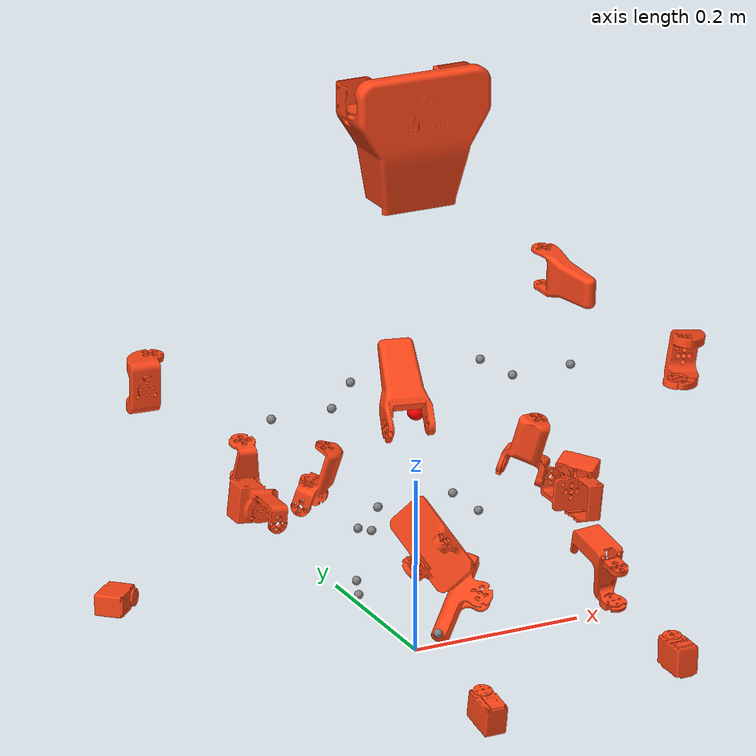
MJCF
<mujoco model="[urdf]_z001">
  <default>
    <mesh maxhullvert="64" />
    <default class="robot">
      <default class="motor">
        <joint armature="0.04" frictionloss="0.2" damping="1.3" />
        <motor />
      </default>
      <default class="visual">
        <geom material="visualgeom" contype="0" conaffinity="0" group="2" />
      </default>
      <default class="collision">
        <geom material="collision_material" condim="3" contype="0" conaffinity="1" priority="1" group="1" solref="0.005 1" solimp="0.99 0.999 1e-05" friction="0.55" />
      </default>
    </default>
  </default>

  <compiler angle="radian" />

  <asset>
    <material name="base_material" rgba="1 0 0 1" />
    <material name="Torso_material" rgba="0.972549 0.529412 0.003922 1" />
    <material name="right_shoulder_yaw_material" rgba="0.980392 0.713725 0.003922 1" />
    <material name="hip_yaw_right_material" rgba="0.960784 0.835294 0.470588 1" />
    <material name="foot_right_material" rgba="0.498039 0.498039 0.498039 1" />
    <material name="default_material" rgba="0.7 0.7 0.7 1" />
    <material name="collision_material" rgba="1.0 0.28 0.1 0.9" />
    <mesh name="Torso.stl" file="meshes/Torso.stl" />
    <mesh name="right_shoulder_yaw.stl" file="meshes/right_shoulder_yaw.stl" />
    <mesh name="right_shoulder_yaw_STS3250.stl" file="meshes/right_shoulder_yaw_STS3250.stl" />
    <mesh name="right_hand.stl" file="meshes/right_hand.stl" />
    <mesh name="left_shoulder_yaw.stl" file="meshes/left_shoulder_yaw.stl" />
    <mesh name="left_shoulder_yaw_STS3250.stl" file="meshes/left_shoulder_yaw_STS3250.stl" />
    <mesh name="left_hand.stl" file="meshes/left_hand.stl" />
    <mesh name="hip_yaw_right.stl" file="meshes/hip_yaw_right.stl" />
    <mesh name="hip_roll_right.stl" file="meshes/hip_roll_right.stl" />
    <mesh name="knee_pitch_right.stl" file="meshes/knee_pitch_right.stl" />
    <mesh name="right_knee_pitch_STS3250.stl" file="meshes/right_knee_pitch_STS3250.stl" />
    <mesh name="foot_right.stl" file="meshes/foot_right.stl" />
    <mesh name="hip_yaw_left.stl" file="meshes/hip_yaw_left.stl" />
    <mesh name="hip_roll_left.stl" file="meshes/hip_roll_left.stl" />
    <mesh name="knee_pitch_left.stl" file="meshes/knee_pitch_left.stl" />
    <mesh name="left_knee_pitch_STS3250.stl" file="meshes/left_knee_pitch_STS3250.stl" />
    <mesh name="foot_left.stl" file="meshes/foot_left.stl" />
  </asset>

  <worldbody>
    <body name="base" pos="0.00000000 0.00000000 0.28141774" quat="1 0 0 0" childclass="robot">
      <freejoint name="floating_base" />
      <geom name="base_visual" pos="0 0 0" quat="1.0 0.0 0.0 0.0" material="base_material" type="sphere" size="0.01" class="visual" />
      <body name="Torso" pos="0 0 0" quat="1.0 0.0 0.0 0.0">
        <inertial pos="-0.000388 0.007611 -0.001460" quat="1.0 0.0 0.0 0.0" mass="1.646425" diaginertia="0.006388 0.008066 0.002805" />
        <geom name="Torso_collision" pos="0 0 0" quat="1.0 0.0 0.0 0.0" type="mesh" mesh="Torso.stl" class="collision" />
        <geom name="Torso_visual" pos="0 0 0" quat="1.0 0.0 0.0 0.0" material="Torso_material" type="mesh" mesh="Torso.stl" class="visual" />
        <body name="right_shoulder_yaw_2" pos="-0.078736 -0.000591 0.046904" quat="0.5000001633974483 0.4999999999999733 0.49999983660255165 0.4999999999999733">
          <joint name="right_shoulder_pitch" type="hinge" ref="0.0" class="motor" range="-1.745329 1.745329" axis="0 0 1" />
          <site name="right_shoulder_pitch_site" pos="0 0 0" quat="1 0 0 0" />
          <inertial pos="0.000343 -0.002951 -0.016944" quat="1.0 0.0 0.0 0.0" mass="0.045585" diaginertia="1.2e-05 2.5e-05 2.5e-05" />
          <geom name="right_shoulder_yaw_2_collision" pos="0 0 0" quat="1.0 0.0 0.0 0.0" type="mesh" mesh="right_shoulder_yaw.stl" class="collision" />
          <geom name="right_shoulder_yaw_2_visual" pos="0 0 0" quat="1.0 0.0 0.0 0.0" material="right_shoulder_yaw_material" type="mesh" mesh="right_shoulder_yaw.stl" class="visual" />
          <body name="right_shoulder_yaw_STS3250" pos="-0.015934 -0.019135 -0.030000" quat="0.4576825114823369 -0.4576823619140523 -0.5390052803037518 0.5390054564479554">
            <joint name="right_shoulder_yaw" type="hinge" ref="0.0" class="motor" range="-1.134464 0.872665" axis="0 0 1" />
            <site name="right_shoulder_yaw_site" pos="0 0 0" quat="1 0 0 0" />
            <inertial pos="-0.000020 0.035530 -0.017149" quat="1.0 0.0 0.0 0.0" mass="0.166819" diaginertia="0.000143 3.8e-05 0.00013" />
            <geom name="right_shoulder_yaw_STS3250_collision" pos="0 0 0" quat="1.0 0.0 0.0 0.0" type="mesh" mesh="right_shoulder_yaw_STS3250.stl" class="collision" />
            <geom name="right_shoulder_yaw_STS3250_visual" pos="0 0 0" quat="1.0 0.0 0.0 0.0" material="base_material" type="mesh" mesh="right_shoulder_yaw_STS3250.stl" class="visual" />
            <body name="right_hand" pos="-0.000041 0.071009 -0.000150" quat="-1.7320510330969933e-07 0.0 -0.0 -0.999999999999985">
              <joint name="right_elbow_yaw" type="hinge" ref="0.0" class="motor" range="-1.570796 1.570796" axis="0 0 -1" />
              <site name="right_elbow_yaw_site" pos="0 0 0" quat="1 0 0 0" />
              <inertial pos="0.033264 -0.031442 -0.018343" quat="1.0 0.0 0.0 0.0" mass="0.078588" diaginertia="3.7e-05 3.9e-05 4.8e-05" />
              <geom name="right_hand_collision" pos="0 0 0" quat="1.0 0.0 0.0 0.0" type="mesh" mesh="right_hand.stl" class="collision" />
              <geom name="right_hand_visual" pos="0 0 0" quat="1.0 0.0 0.0 0.0" material="Torso_material" type="mesh" mesh="right_hand.stl" class="visual" />
            </body>
          </body>
        </body>
        <body name="left_shoulder_yaw_2" pos="0.077064 -0.000591 0.046904" quat="0.5000001633974483 -0.4999999999999733 -0.49999983660255165 0.4999999999999733">
          <joint name="left_shoulder_pitch" type="hinge" ref="0.0" class="motor" range="-1.745329 1.745329" axis="0 0 1" />
          <site name="left_shoulder_pitch_site" pos="0 0 0" quat="1 0 0 0" />
          <inertial pos="-0.000051 0.002971 -0.016944" quat="1.0 0.0 0.0 0.0" mass="0.045585" diaginertia="1.2e-05 2.5e-05 2.5e-05" />
          <geom name="left_shoulder_yaw_2_collision" pos="0 0 0" quat="1.0 0.0 0.0 0.0" type="mesh" mesh="left_shoulder_yaw.stl" class="collision" />
          <geom name="left_shoulder_yaw_2_visual" pos="0 0 0" quat="1.0 0.0 0.0 0.0" material="right_shoulder_yaw_material" type="mesh" mesh="left_shoulder_yaw.stl" class="visual" />
          <body name="left_shoulder_yaw_STS3250" pos="-0.018328 0.016856 -0.030000" quat="0.5074392011700896 -0.5074390353415754 -0.4924484358937116 0.4924485968233736">
            <joint name="left_shoulder_yaw" type="hinge" ref="0.0" class="motor" range="-1.134464 0.872665" axis="0 0 1" />
            <site name="left_shoulder_yaw_site" pos="0 0 0" quat="1 0 0 0" />
            <inertial pos="-0.000083 0.035541 -0.017149" quat="1.0 0.0 0.0 0.0" mass="0.166819" diaginertia="0.000143 3.8e-05 0.00013" />
            <geom name="left_shoulder_yaw_STS3250_collision" pos="0 0 0" quat="1.0 0.0 0.0 0.0" type="mesh" mesh="left_shoulder_yaw_STS3250.stl" class="collision" />
            <geom name="left_shoulder_yaw_STS3250_visual" pos="0 0 0" quat="1.0 0.0 0.0 0.0" material="base_material" type="mesh" mesh="left_shoulder_yaw_STS3250.stl" class="visual" />
            <body name="left_hand" pos="-0.000204 0.071029 -0.000150" quat="-1.2226055742095493e-07 -0.7058715654719778 -0.7083398429130676 -1.2268807567013591e-07">
              <joint name="left_elbow_yaw" type="hinge" ref="0.0" class="motor" range="-1.570796 1.570796" axis="0 0 1" />
              <site name="left_elbow_yaw_site" pos="0 0 0" quat="1 0 0 0" />
              <inertial pos="0.007000 0.045233 0.018343" quat="1.0 0.0 0.0 0.0" mass="0.078587" diaginertia="5.8e-05 1.8e-05 4.8e-05" />
              <geom name="left_hand_collision" pos="0 0 0" quat="1.0 0.0 0.0 0.0" type="mesh" mesh="left_hand.stl" class="collision" />
              <geom name="left_hand_visual" pos="0 0 0" quat="1.0 0.0 0.0 0.0" material="Torso_material" type="mesh" mesh="left_hand.stl" class="visual" />
            </body>
          </body>
        </body>
        <body name="hip_yaw_right" pos="-0.046236 -0.000591 -0.103096" quat="0.5000001633974483 0.4999999999999733 0.49999983660255165 0.4999999999999733">
          <joint name="right_hip_pitch" type="hinge" ref="0.0" class="motor" range="-1.570796 1.570796" axis="0 0 1" />
          <site name="right_hip_pitch_site" pos="0 0 0" quat="1 0 0 0" />
          <inertial pos="-0.008374 0.000683 -0.014932" quat="1.0 0.0 0.0 0.0" mass="0.102009" diaginertia="4.4e-05 3.8e-05 3.6e-05" />
          <geom name="hip_yaw_right_collision" pos="0 0 0" quat="1.0 0.0 0.0 0.0" type="mesh" mesh="hip_yaw_right.stl" class="collision" />
          <geom name="hip_yaw_right_visual" pos="0 0 0" quat="1.0 0.0 0.0 0.0" material="hip_yaw_right_material" type="mesh" mesh="hip_yaw_right.stl" class="visual" />
          <body name="hip_roll_right" pos="-0.023935 -0.014864 -0.019360" quat="0.033943515242600086 -0.7062917252597709 -0.033943504150034345 -0.7062914944472772">
            <joint name="right_hip_yaw" type="hinge" ref="0.0" class="motor" range="-1.570796 0.087266" axis="0 0 1" />
            <site name="right_hip_yaw_site" pos="0 0 0" quat="1 0 0 0" />
            <inertial pos="-0.004912 0.042753 0.027930" quat="1.0 0.0 0.0 0.0" mass="0.110226" diaginertia="6.6e-05 3.7e-05 4.6e-05" />
            <geom name="hip_roll_right_collision" pos="0 0 0" quat="1.0 0.0 0.0 0.0" type="mesh" mesh="hip_roll_right.stl" class="collision" />
            <geom name="hip_roll_right_visual" pos="0 0 0" quat="1.0 0.0 0.0 0.0" material="Torso_material" type="mesh" mesh="hip_roll_right.stl" class="visual" />
            <body name="knee_pitch_right" pos="-0.007794 0.067058 0.015000" quat="0.7059238940905344 0.7059236633982461 0.04088542597248324 0.04088543933363398">
              <joint name="right_hip_roll" type="hinge" ref="0.0" class="motor" range="-0.785398 0.785398" axis="0 0 1" />
              <site name="right_hip_roll_site" pos="0 0 0" quat="1 0 0 0" />
              <inertial pos="0.004892 -0.003437 0.001801" quat="1.0 0.0 0.0 0.0" mass="0.028899" diaginertia="1.7e-05 1.6e-05 9e-06" />
              <geom name="knee_pitch_right_collision" pos="0 0 0" quat="1.0 0.0 0.0 0.0" type="mesh" mesh="knee_pitch_right.stl" class="collision" />
              <geom name="knee_pitch_right_visual" pos="0 0 0" quat="1.0 0.0 0.0 0.0" material="Torso_material" type="mesh" mesh="knee_pitch_right.stl" class="visual" />
              <body name="right_knee_pitch_STS3250" pos="0.013311 0.013311 -0.024710" quat="0.6731326567161733 0.6290976800867877 -0.3228559240210187 -0.21654696418140423">
                <joint name="right_knee_pitch" type="hinge" ref="0.0" class="motor" range="-4.712389 -1.570796" axis="0 0 -1" />
                <site name="right_knee_pitch_site" pos="0 0 0" quat="1 0 0 0" />
                <inertial pos="0 0.038863 0.017050" quat="1.0 0.0 0.0 0.0" mass="0.170594" diaginertia="0.000171 3.9e-05 0.000157" />
                <geom name="right_knee_pitch_STS3250_collision" pos="0 0 0" quat="1.0 0.0 0.0 0.0" type="mesh" mesh="right_knee_pitch_STS3250.stl" class="collision" />
                <geom name="right_knee_pitch_STS3250_visual" pos="0 0 0" quat="1.0 0.0 0.0 0.0" material="base_material" type="mesh" mesh="right_knee_pitch_STS3250.stl" class="visual" />
                <body name="foot_right" pos="0.000002 0.077723 0" quat="-1.7320510330969933e-07 0.0 -0.0 -0.999999999999985">
                  <joint name="right_ankle_pitch" type="hinge" ref="0.0" class="motor" range="-1.570796 1.570796" axis="0 0 1" />
                  <site name="right_ankle_pitch_site" pos="0 0 0" quat="1 0 0 0" />
                  <inertial pos="0.003297 -0.024790 0.018603" quat="1.0 0.0 0.0 0.0" mass="0.112806" diaginertia="3.8e-05 0.000105 9.2e-05" />
                  <geom name="foot_right_collision" pos="0 0 0" quat="1.0 0.0 0.0 0.0" type="mesh" mesh="foot_right.stl" class="collision" />
                  <geom name="foot_right_visual" pos="0 0 0" quat="1.0 0.0 0.0 0.0" material="foot_right_material" type="mesh" mesh="foot_right.stl" class="visual" />
                </body>
              </body>
            </body>
          </body>
        </body>
        <body name="hip_yaw_left" pos="0.044564 -0.000591 -0.103096" quat="0.5000001633974483 -0.4999999999999733 -0.49999983660255165 0.4999999999999733">
          <joint name="left_hip_pitch" type="hinge" ref="0.0" class="motor" range="-1.570796 1.570796" axis="0 0 1" />
          <site name="left_hip_pitch_site" pos="0 0 0" quat="1 0 0 0" />
          <inertial pos="-0.008385 -0.000524 -0.014912" quat="1.0 0.0 0.0 0.0" mass="0.102009" diaginertia="4.4e-05 3.8e-05 3.6e-05" />
          <geom name="hip_yaw_left_collision" pos="0 0 0" quat="1.0 0.0 0.0 0.0" type="mesh" mesh="hip_yaw_left.stl" class="collision" />
          <geom name="hip_yaw_left_visual" pos="0 0 0" quat="1.0 0.0 0.0 0.0" material="hip_yaw_right_material" type="mesh" mesh="hip_yaw_left.stl" class="visual" />
          <body name="hip_roll_left" pos="-0.023649 0.015314 -0.019360" quat="0.040631887754264934 -0.7059385335105126 0.040631874475973544 0.7059383028134402">
            <joint name="left_hip_yaw" type="hinge" ref="0.0" class="motor" range="-1.570796 0.087266" axis="0 0 -1" />
            <site name="left_hip_yaw_site" pos="0 0 0" quat="1 0 0 0" />
            <inertial pos="-0.003788 -0.042867 -0.027930" quat="1.0 0.0 0.0 0.0" mass="0.110226" diaginertia="6.6e-05 3.7e-05 4.6e-05" />
            <geom name="hip_roll_left_collision" pos="0 0 0" quat="1.0 0.0 0.0 0.0" type="mesh" mesh="hip_roll_left.stl" class="collision" />
            <geom name="hip_roll_left_visual" pos="0 0 0" quat="1.0 0.0 0.0 0.0" material="Torso_material" type="mesh" mesh="hip_roll_left.stl" class="visual" />
            <body name="knee_pitch_left" pos="-0.005884 -0.067253 -0.015000" quat="0.7064338947764528 -0.706433663917499 0.030843396159466237 -0.030843406238932343">
              <joint name="left_hip_roll" type="hinge" ref="0.0" class="motor" range="-0.785398 0.785398" axis="0 0 1" />
              <site name="left_hip_roll_site" pos="0 0 0" quat="1 0 0 0" />
              <inertial pos="-0.004892 -0.003437 0.001801" quat="1.0 0.0 0.0 0.0" mass="0.028899" diaginertia="1.7e-05 1.6e-05 9e-06" />
              <geom name="knee_pitch_left_collision" pos="0 0 0" quat="1.0 0.0 0.0 0.0" type="mesh" mesh="knee_pitch_left.stl" class="collision" />
              <geom name="knee_pitch_left_visual" pos="0 0 0" quat="1.0 0.0 0.0 0.0" material="Torso_material" type="mesh" mesh="knee_pitch_left.stl" class="visual" />
              <body name="left_knee_pitch_STS3250" pos="-0.013311 0.013311 -0.024710" quat="0.6353994549870228 0.668689367115688 0.22990077891447075 0.31027035753216037">
                <joint name="left_knee_pitch" type="hinge" ref="0.0" class="motor" range="-1.570796 1.570796" axis="0 0 -1" />
                <site name="left_knee_pitch_site" pos="0 0 0" quat="1 0 0 0" />
                <inertial pos="0.000016 -0.038867 0.017050" quat="1.0 0.0 0.0 0.0" mass="0.170594" diaginertia="0.000171 3.9e-05 0.000157" />
                <geom name="left_knee_pitch_STS3250_collision" pos="0 0 0" quat="1.0 0.0 0.0 0.0" type="mesh" mesh="left_knee_pitch_STS3250.stl" class="collision" />
                <geom name="left_knee_pitch_STS3250_visual" pos="0 0 0" quat="1.0 0.0 0.0 0.0" material="base_material" type="mesh" mesh="left_knee_pitch_STS3250.stl" class="visual" />
                <body name="foot_left" pos="0.000060 -0.077734 0" quat="0.9999996193718992 0.0 0.0 0.0008724998893006578">
                  <joint name="left_ankle_pitch" type="hinge" ref="0.0" class="motor" range="-1.570796 1.570796" axis="0 0 1" />
                  <site name="left_ankle_pitch_site" pos="0 0 0" quat="1 0 0 0" />
                  <inertial pos="-0.010425 -0.022731 0.018600" quat="1.0 0.0 0.0 0.0" mass="0.112811" diaginertia="3.2e-05 0.00011 9.2e-05" />
                  <geom name="foot_left_collision" pos="0 0 0" quat="1.0 0.0 0.0 0.0" type="mesh" mesh="foot_left.stl" class="collision" />
                  <geom name="foot_left_visual" pos="0 0 0" quat="1.0 0.0 0.0 0.0" material="foot_right_material" type="mesh" mesh="foot_left.stl" class="visual" />
                </body>
              </body>
            </body>
          </body>
        </body>
      </body>
      <site name="base_site" pos="0 0 0" quat="1 0 0 0" />
      <camera name="front_camera" mode="track" fovy="90.0" quat="4.329780281177467e-17 4.329780281177466e-17 0.7071067811865475 0.7071067811865476" pos="0.0 2.0 0.5" />
      <camera name="side_camera" mode="track" fovy="90.0" quat="-0.5 -0.4999999999999999 0.5 0.5000000000000001" pos="-2.0 0.0 0.5" />
    </body>
  </worldbody>

  <actuator>
    <motor name="right_shoulder_pitch_ctrl" joint="right_shoulder_pitch" class="motor" />
    <motor name="right_shoulder_yaw_ctrl" joint="right_shoulder_yaw" class="motor" />
    <motor name="right_elbow_yaw_ctrl" joint="right_elbow_yaw" class="motor" />
    <motor name="left_shoulder_pitch_ctrl" joint="left_shoulder_pitch" class="motor" />
    <motor name="left_shoulder_yaw_ctrl" joint="left_shoulder_yaw" class="motor" />
    <motor name="left_elbow_yaw_ctrl" joint="left_elbow_yaw" class="motor" />
    <motor name="right_hip_pitch_ctrl" joint="right_hip_pitch" class="motor" />
    <motor name="right_hip_yaw_ctrl" joint="right_hip_yaw" class="motor" />
    <motor name="right_hip_roll_ctrl" joint="right_hip_roll" class="motor" />
    <motor name="right_knee_pitch_ctrl" joint="right_knee_pitch" class="motor" />
    <motor name="right_ankle_pitch_ctrl" joint="right_ankle_pitch" class="motor" />
    <motor name="left_hip_pitch_ctrl" joint="left_hip_pitch" class="motor" />
    <motor name="left_hip_yaw_ctrl" joint="left_hip_yaw" class="motor" />
    <motor name="left_hip_roll_ctrl" joint="left_hip_roll" class="motor" />
    <motor name="left_knee_pitch_ctrl" joint="left_knee_pitch" class="motor" />
    <motor name="left_ankle_pitch_ctrl" joint="left_ankle_pitch" class="motor" />
  </actuator>

  <contact>
    <exclude body1="Torso" body2="right_shoulder_yaw_2" />
    <exclude body1="Torso" body2="left_shoulder_yaw_2" />
    <exclude body1="Torso" body2="hip_yaw_right" />
    <exclude body1="Torso" body2="hip_yaw_left" />
    <exclude body1="right_shoulder_yaw_2" body2="right_shoulder_yaw_STS3250" />
    <exclude body1="left_shoulder_yaw_2" body2="left_shoulder_yaw_STS3250" />
    <exclude body1="hip_yaw_right" body2="hip_roll_right" />
    <exclude body1="hip_yaw_left" body2="hip_roll_left" />
    <exclude body1="right_shoulder_yaw_STS3250" body2="right_hand" />
    <exclude body1="left_shoulder_yaw_STS3250" body2="left_hand" />
    <exclude body1="hip_roll_right" body2="knee_pitch_right" />
    <exclude body1="hip_roll_left" body2="knee_pitch_left" />
    <exclude body1="knee_pitch_right" body2="right_knee_pitch_STS3250" />
    <exclude body1="knee_pitch_left" body2="left_knee_pitch_STS3250" />
    <exclude body1="right_knee_pitch_STS3250" body2="foot_right" />
    <exclude body1="left_knee_pitch_STS3250" body2="foot_left" />
  </contact>

  <sensor>
    <framepos name="right_shoulder_pitch_site_pos" objtype="site" objname="right_shoulder_pitch_site" />
    <framequat name="right_shoulder_pitch_site_quat" objtype="site" objname="right_shoulder_pitch_site" />
    <framelinvel name="right_shoulder_pitch_site_linvel" objtype="site" objname="right_shoulder_pitch_site" />
    <frameangvel name="right_shoulder_pitch_site_angvel" objtype="site" objname="right_shoulder_pitch_site" />
    <velocimeter name="right_shoulder_pitch_site_vel" site="right_shoulder_pitch_site" />
  </sensor>
</mujoco>
